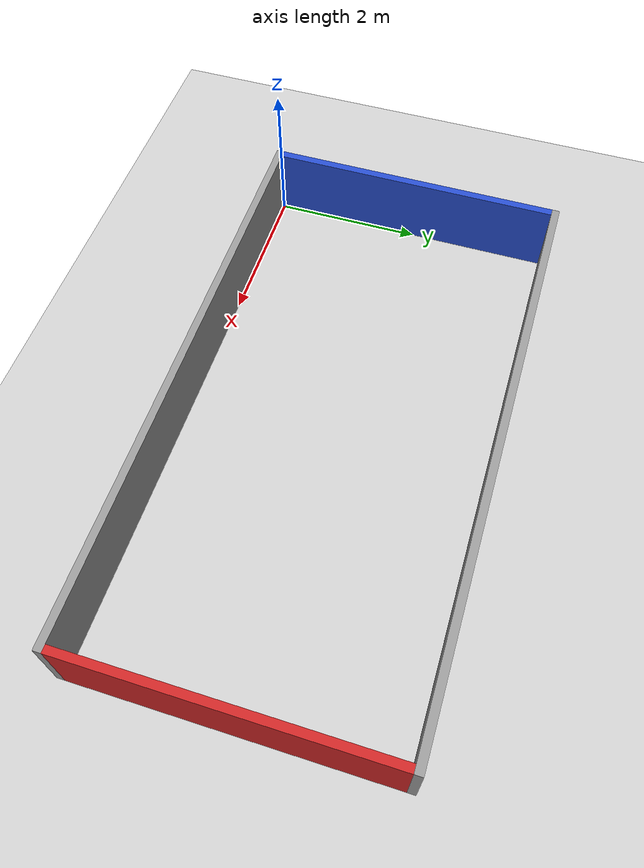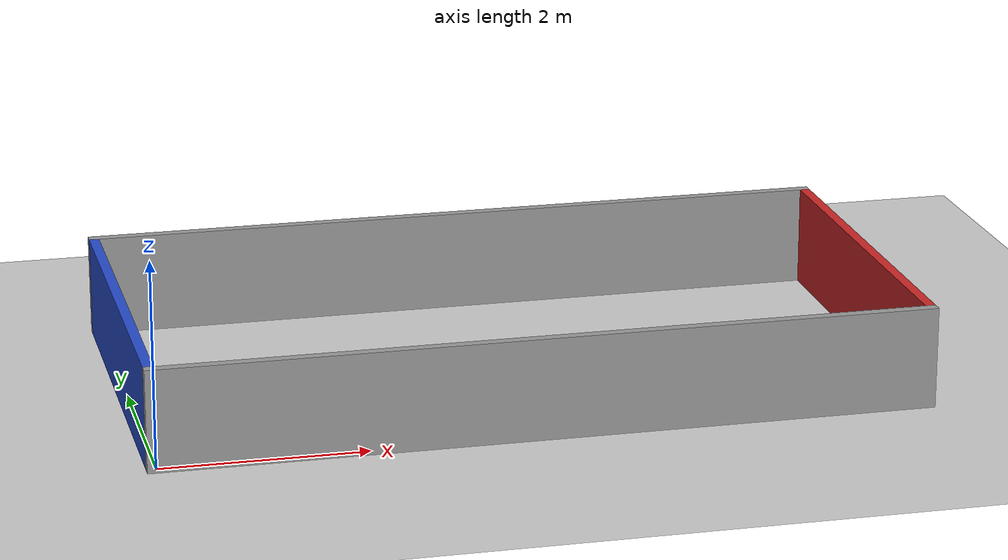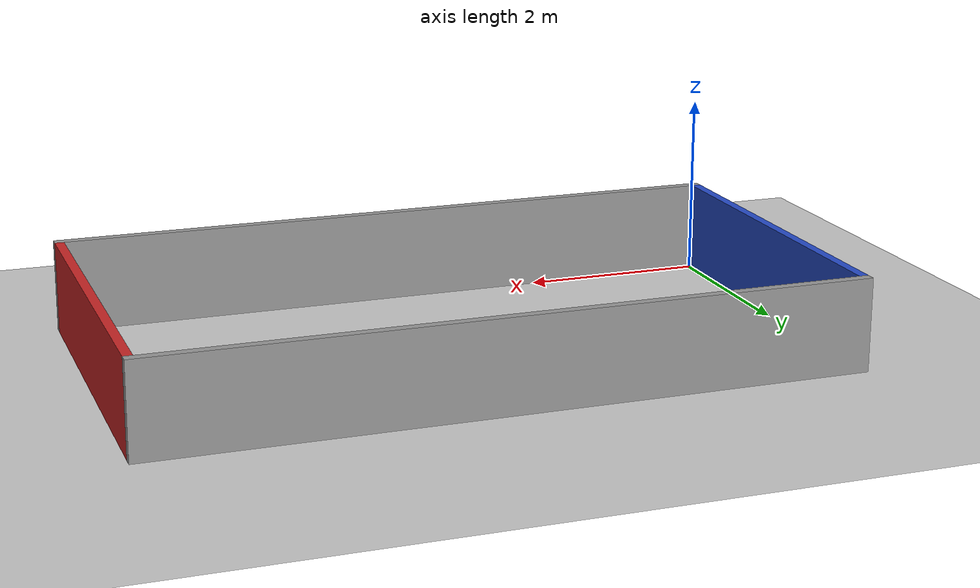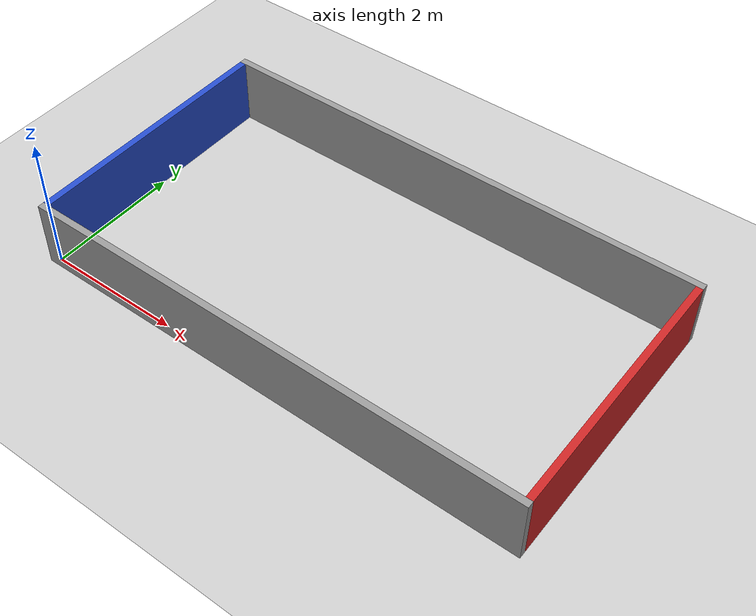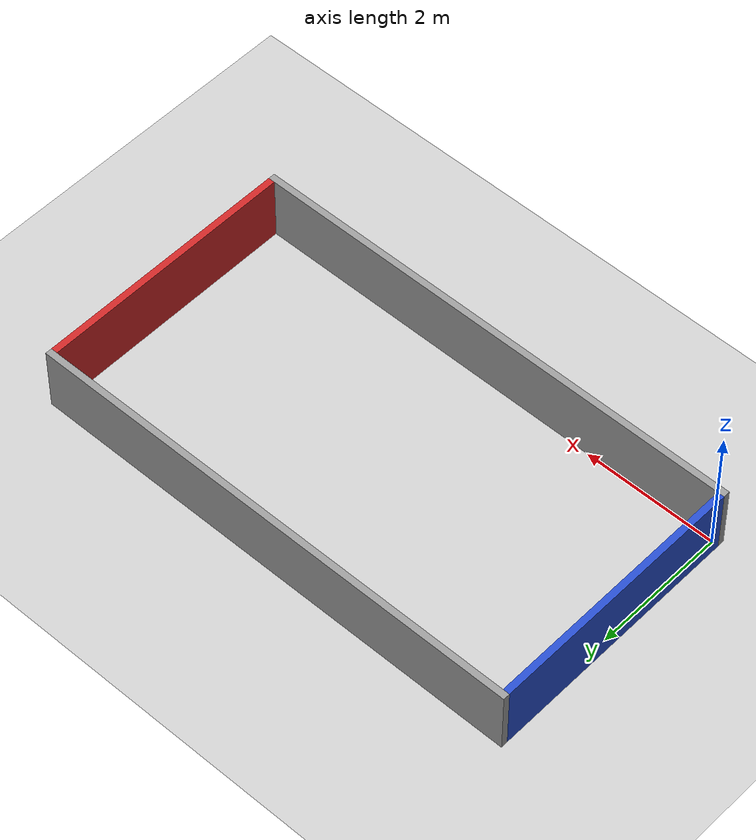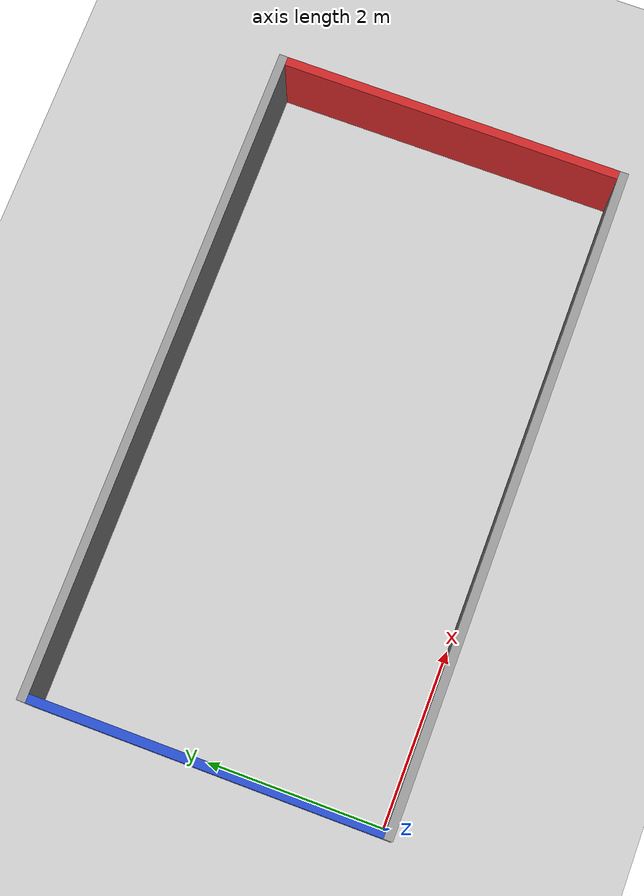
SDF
<sdf version="1.6">
 <world name="default">
  <model name="ground_plane">
   <static>1</static>
   <link name="link">
    <collision name="collision">
     <geometry><plane><normal>0 0 1</normal><size>100 100</size></plane></geometry>
     <surface><friction><ode><mu>100</mu><mu2>50</mu2></ode></friction></surface>
    </collision>
    <visual name="visual">
     <cast_shadows>0</cast_shadows>
     <geometry><plane><normal>0 0 1</normal><size>100 100</size></plane></geometry>
     <material>
      <script><uri>file://media/materials/scripts/gazebo.material</uri><name>Gazebo/Grey</name></script>
     </material>
    </visual>
   </link>
  </model>
  <model name="RMC_Walls_1">
   <link name="mining_wall">
    <pose>3.74 0 0 0 -0 0</pose>
    <inertial>
     <mass>1</mass>
     <inertia>
      <ixx>0.166667</ixx>
      <ixy>0</ixy>
      <ixz>0</ixz>
      <iyy>0.166667</iyy>
      <iyz>0</iyz>
      <izz>0.166667</izz>
     </inertia>
    </inertial>
    <visual name="visual">
     <geometry><box><size>0.1 3.88 1</size></box></geometry>
     <material>
      <lighting>1</lighting>
      <script><uri>file://media/materials/scripts/gazebo.material</uri><name>Gazebo/Red</name></script>
      <ambient>1 0 0 1</ambient>
      <diffuse>0.7 0.7 0.7 1</diffuse>
      <specular>0.01 0.01 0.01 1</specular>
      <emissive>0 0 0 1</emissive>
      <shader type="vertex"><normal_map>__default__</normal_map></shader>
     </material>
    </visual>
    <collision name="collision">
     <geometry><box><size>0.1 3.88 1</size></box></geometry>
     <surface>
      <friction>
       <ode><mu>1</mu><mu2>1</mu2><fdir1>0 0 0</fdir1><slip1>0</slip1><slip2>0</slip2></ode>
       <torsional>
        <coefficient>1</coefficient>
        <patch_radius>0</patch_radius>
        <surface_radius>0</surface_radius>
        <use_patch_radius>1</use_patch_radius>
        <ode><slip>0</slip></ode>
       </torsional>
      </friction>
      <bounce><restitution_coefficient>0</restitution_coefficient><threshold>1e+06</threshold></bounce>
      <contact>
       <collide_without_contact>0</collide_without_contact>
       <collide_without_contact_bitmask>1</collide_without_contact_bitmask>
       <collide_bitmask>1</collide_bitmask>
       <ode>
        <soft_cfm>0</soft_cfm>
        <soft_erp>0.2</soft_erp>
        <kp>1e+13</kp>
        <kd>1</kd>
        <max_vel>0.01</max_vel>
        <min_depth>0</min_depth>
       </ode>
       <bullet>
        <split_impulse>1</split_impulse>
        <split_impulse_penetration_threshold>-0.01</split_impulse_penetration_threshold>
        <soft_cfm>0</soft_cfm>
        <soft_erp>0.2</soft_erp>
        <kp>1e+13</kp>
        <kd>1</kd>
       </bullet>
      </contact>
     </surface>
    </collision>
   </link>
   <link name="collector_wall">
    <pose>-3.74 0 0 0 -0 0</pose>
    <inertial>
     <mass>1</mass>
     <inertia>
      <ixx>0.166667</ixx>
      <ixy>0</ixy>
      <ixz>0</ixz>
      <iyy>0.166667</iyy>
      <iyz>0</iyz>
      <izz>0.166667</izz>
     </inertia>
    </inertial>
    <visual name="visual">
     <geometry><box><size>0.1 3.88 1</size></box></geometry>
     <material>
      <lighting>1</lighting>
      <script><uri>file://media/materials/scripts/gazebo.material</uri><name>Gazebo/Blue</name></script>
      <ambient>0 0 1 1</ambient>
      <diffuse>0.7 0.7 0.7 1</diffuse>
      <specular>0.01 0.01 0.01 1</specular>
      <emissive>0 0 0 1</emissive>
      <shader type="vertex"><normal_map>__default__</normal_map></shader>
     </material>
    </visual>
    <collision name="collision">
     <geometry><box><size>0.1 3.88 1</size></box></geometry>
     <surface>
      <friction>
       <ode><mu>1</mu><mu2>1</mu2><fdir1>0 0 0</fdir1><slip1>0</slip1><slip2>0</slip2></ode>
       <torsional>
        <coefficient>1</coefficient>
        <patch_radius>0</patch_radius>
        <surface_radius>0</surface_radius>
        <use_patch_radius>1</use_patch_radius>
        <ode><slip>0</slip></ode>
       </torsional>
      </friction>
      <bounce><restitution_coefficient>0</restitution_coefficient><threshold>1e+06</threshold></bounce>
      <contact>
       <collide_without_contact>0</collide_without_contact>
       <collide_without_contact_bitmask>1</collide_without_contact_bitmask>
       <collide_bitmask>1</collide_bitmask>
       <ode>
        <soft_cfm>0</soft_cfm>
        <soft_erp>0.2</soft_erp>
        <kp>1e+13</kp>
        <kd>1</kd>
        <max_vel>0.01</max_vel>
        <min_depth>0</min_depth>
       </ode>
       <bullet>
        <split_impulse>1</split_impulse>
        <split_impulse_penetration_threshold>-0.01</split_impulse_penetration_threshold>
        <soft_cfm>0</soft_cfm>
        <soft_erp>0.2</soft_erp>
        <kp>1e+13</kp>
        <kd>1</kd>
       </bullet>
      </contact>
     </surface>
    </collision>
   </link>
   <link name="left_wall">
    <pose>0 1.99 0 0 -0 0</pose>
    <inertial>
     <mass>1</mass>
     <inertia>
      <ixx>0.166667</ixx>
      <ixy>0</ixy>
      <ixz>0</ixz>
      <iyy>0.166667</iyy>
      <iyz>0</iyz>
      <izz>0.166667</izz>
     </inertia>
    </inertial>
    <visual name="visual">
     <geometry><box><size>7.58 0.1 1</size></box></geometry>
     <material>
      <lighting>1</lighting>
      <script><uri>file://media/materials/scripts/gazebo.material</uri><name>Gazebo/Grey</name></script>
      <ambient>0.3 0.3 0.3 1</ambient>
      <diffuse>0.7 0.7 0.7 1</diffuse>
      <specular>0.01 0.01 0.01 1</specular>
      <emissive>0 0 0 1</emissive>
      <shader type="vertex"><normal_map>__default__</normal_map></shader>
     </material>
    </visual>
    <collision name="collision">
     <geometry><box><size>7.58 0.1 1</size></box></geometry>
     <surface>
      <friction>
       <ode><mu>1</mu><mu2>1</mu2><fdir1>0 0 0</fdir1><slip1>0</slip1><slip2>0</slip2></ode>
       <torsional>
        <coefficient>1</coefficient>
        <patch_radius>0</patch_radius>
        <surface_radius>0</surface_radius>
        <use_patch_radius>1</use_patch_radius>
        <ode><slip>0</slip></ode>
       </torsional>
      </friction>
      <bounce><restitution_coefficient>0</restitution_coefficient><threshold>1e+06</threshold></bounce>
      <contact>
       <collide_without_contact>0</collide_without_contact>
       <collide_without_contact_bitmask>1</collide_without_contact_bitmask>
       <collide_bitmask>1</collide_bitmask>
       <ode>
        <soft_cfm>0</soft_cfm>
        <soft_erp>0.2</soft_erp>
        <kp>1e+13</kp>
        <kd>1</kd>
        <max_vel>0.01</max_vel>
        <min_depth>0</min_depth>
       </ode>
       <bullet>
        <split_impulse>1</split_impulse>
        <split_impulse_penetration_threshold>-0.01</split_impulse_penetration_threshold>
        <soft_cfm>0</soft_cfm>
        <soft_erp>0.2</soft_erp>
        <kp>1e+13</kp>
        <kd>1</kd>
       </bullet>
      </contact>
     </surface>
    </collision>
   </link>
   <link name="right_wall">
    <pose>0 -1.99 0 0 -0 0</pose>
    <inertial>
     <mass>1</mass>
     <inertia>
      <ixx>0.166667</ixx>
      <ixy>0</ixy>
      <ixz>0</ixz>
      <iyy>0.166667</iyy>
      <iyz>0</iyz>
      <izz>0.166667</izz>
     </inertia>
    </inertial>
    <visual name="visual">
     <geometry><box><size>7.58 0.1 1</size></box></geometry>
     <material>
      <lighting>1</lighting>
      <script><uri>file://media/materials/scripts/gazebo.material</uri><name>Gazebo/Grey</name></script>
      <ambient>0.3 0.3 0.3 1</ambient>
      <diffuse>0.7 0.7 0.7 1</diffuse>
      <specular>0.01 0.01 0.01 1</specular>
      <emissive>0 0 0 1</emissive>
      <shader type="vertex"><normal_map>__default__</normal_map></shader>
     </material>
    </visual>
    <collision name="collision">
     <geometry><box><size>7.58 0.1 1</size></box></geometry>
     <surface>
      <friction>
       <ode><mu>1</mu><mu2>1</mu2><fdir1>0 0 0</fdir1><slip1>0</slip1><slip2>0</slip2></ode>
       <torsional>
        <coefficient>1</coefficient>
        <patch_radius>0</patch_radius>
        <surface_radius>0</surface_radius>
        <use_patch_radius>1</use_patch_radius>
        <ode><slip>0</slip></ode>
       </torsional>
      </friction>
      <bounce><restitution_coefficient>0</restitution_coefficient><threshold>1e+06</threshold></bounce>
      <contact>
       <collide_without_contact>0</collide_without_contact>
       <collide_without_contact_bitmask>1</collide_without_contact_bitmask>
       <collide_bitmask>1</collide_bitmask>
       <ode>
        <soft_cfm>0</soft_cfm>
        <soft_erp>0.2</soft_erp>
        <kp>1e+13</kp>
        <kd>1</kd>
        <max_vel>0.01</max_vel>
        <min_depth>0</min_depth>
       </ode>
       <bullet>
        <split_impulse>1</split_impulse>
        <split_impulse_penetration_threshold>-0.01</split_impulse_penetration_threshold>
        <soft_cfm>0</soft_cfm>
        <soft_erp>0.2</soft_erp>
        <kp>1e+13</kp>
        <kd>1</kd>
       </bullet>
      </contact>
     </surface>
    </collision>
   </link>
   <static>1</static>
   <pose>3.69 1.94 0.5 0 -0 0</pose>
  </model>
 </world>
</sdf>
